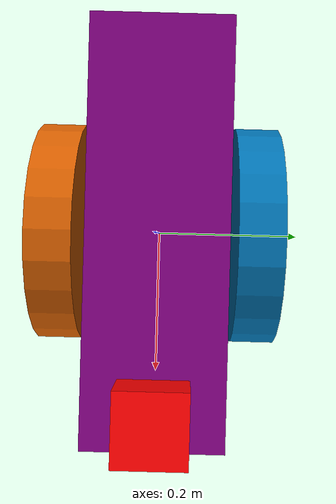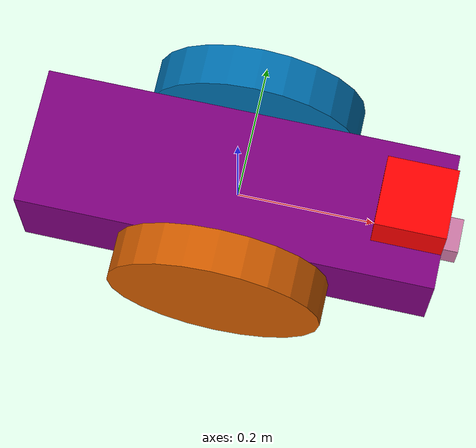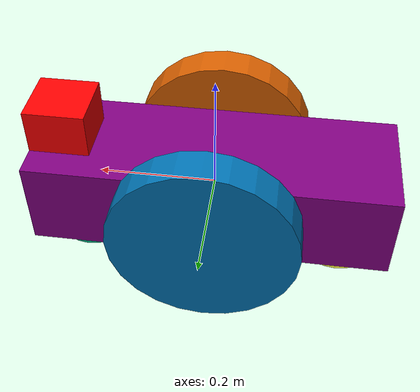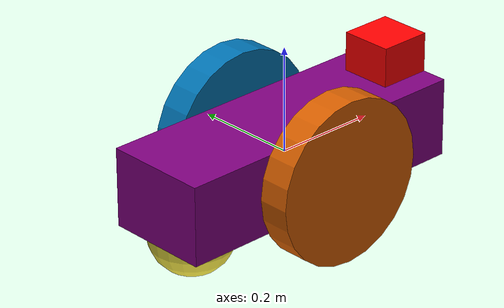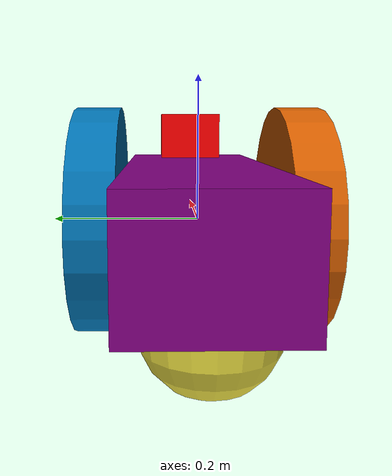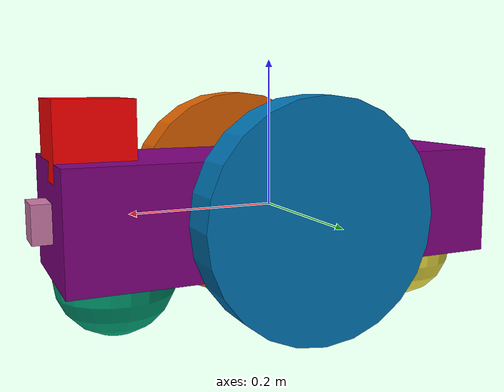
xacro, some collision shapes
<robot name="my_robot" xmlns:xacro="http://www.ros.org/wiki/xacro">

  <link name="robot_footprint"></link>

  <joint name="robot_footprint_joint" type="fixed">
    <origin xyz="0 0 0" rpy="0 0 0" />
    <parent link="robot_footprint"/>
    <child link="chassis" />
  </joint>

    <link name='chassis'>
        <pose>0 0 0.1 0 0 0</pose>

        <inertial>
        <mass value="15.0"/>
        <origin xyz="0.0 0 0" rpy=" 0 0 0"/>
        <inertia
            ixx="0.1" ixy="0" ixz="0"
            iyy="0.1" iyz="0"
            izz="0.1"
        />
        </inertial>

        <collision name='chassis_collision'>
        <origin xyz="0 0 0" rpy=" 0 0 0"/>
        <geometry>
            <box size=".6 .2 .15"/>
        </geometry>
        </collision>

        <visual name='chassis_visual'>
        <origin xyz="0 0 0" rpy=" 0 0 0"/>
        <geometry>
            <box size=".6 .2 .15"/>
        </geometry>
        <material name = "Purple">
          <color rgba="0.5 0.0 0.5 1.0"/>
        </material>
        </visual>
    </link>

    <gazebo reference="chassis">
      <material>Gazebo/Blue</material>
    </gazebo>

    <link name="front_caster">
      <pose> 0 0 0.08 0 0 0 </pose>

      <inertial>
        <origin xyz="0.0 0.0 0.0" rpy="0.0 0.0 0.0"/>
        <mass value="0.1"/>
        <inertia ixx="0.0" ixy="0.0" ixz="0.0" iyy="0.0" iyz="0.0" izz="0.0"/>
      </inertial>

      <collision name='front_caster_collision'>
        <origin xyz="0 0 0" rpy=" 0 0 0"/>
        <geometry>
            <sphere radius="0.08"/>
        </geometry>
        </collision>

        <visual name='front_caster_visual'>
        <origin xyz="0 0 0" rpy=" 0 0 0"/>
        <geometry>
            <sphere radius="0.08"/>
        </geometry>
        </visual>
    </link>

    <joint name="front_caster_joint" type="continuous">
      <origin xyz="0.22 0 -0.075" rpy="0.0 0.0 0.0"/>
      <parent link="chassis"/>
      <child link="front_caster"/>
      <axis xyz="0.0 0.0 1"/>
      <limit effort="10000" velocity="1000"/>
      <dynamics damping="1.0" friction="0.01"/>
    </joint>

    <link name="rear_caster">
      <pose> 0 0 0.08 0 0 0 </pose>
      <inertial>
        <origin xyz="0.0 0.0 0.0" rpy="0.0 0.0 0.0"/>
        <mass value="0.1"/>
        <inertia ixx="0.0" ixy="0.0" ixz="0.0" iyy="0.0" iyz="0.0" izz="0.0"/>
      </inertial>

      <collision name='rear_caster_collision'>
        <origin xyz="0 0 0" rpy=" 0 0 0"/>
        <geometry>
            <sphere radius="0.08"/>
        </geometry>
      </collision>

      <visual name='rear_caster_visual'>
        <origin xyz="0 0 0" rpy=" 0 0 0"/>
        <geometry>
            <sphere radius="0.08"/>
        </geometry>
      </visual>
    </link>

    <joint name="rear_caster_joint" type="continuous">
      <origin xyz="-0.22 0 -0.075" rpy="0.0 0.0 0.0"/>
      <parent link="chassis"/>
      <child link="rear_caster"/>
      <axis xyz="0.0 0.0 1"/>
      <limit effort="10000" velocity="1000"/>
      <dynamics damping="1.0" friction="0.01"/>
    </joint>

    <link name = "left_wheel">
        <pose> 0 0 0.155 0 1.5707 1.5707 </pose>

        <inertial>
        <mass value="5.0"/>
        <origin xyz="0.0 0 0" rpy=" 0 1.5707 1.5707"/>
        <inertia
            ixx="0.1" ixy="0" ixz="0"
            iyy="0.1" iyz="0"
            izz="0.1"
        />
        </inertial>

        <collision name = "collision_left_wheel">
        <origin xyz="0.0 0 0" rpy=" 0 1.5707 1.5707"/>
        <geometry>
          <cylinder length="0.06" radius="0.155"/>
        </geometry>
      </collision>

      <visual name = "visual_left_wheel">
      <origin xyz="0.0 0 0" rpy=" 0 1.5707 1.5707"/>
        <geometry>
          <cylinder length="0.06" radius="0.155"/>
        </geometry>
      </visual>
    </link>

    <joint type="continuous" name="left_wheel_hinge">
        <origin xyz="0 0.135 0" rpy="0 0 0"/>
        <child link="left_wheel"/>
        <parent link="chassis"/>
        <axis xyz="0 1 0" rpy="0 0 0"/>
        <limit effort="10000" velocity="1000"/>
        <dynamics damping="1.0" friction="1.0"/>
    </joint>

    <link name = "right_wheel">
        <pose> 0 0 0.155 0 1.5707 1.5707 </pose>

        <inertial>
        <mass value="5.0"/>
        <origin xyz="0.0 0 0" rpy=" 0 1.5707 1.5707"/>
        <inertia
            ixx="0.1" ixy="0" ixz="0"
            iyy="0.1" iyz="0"
            izz="0.1"
        />
        </inertial>

        <collision name = "collision_right_wheel">
        <origin xyz="0.0 0 0" rpy=" 0 1.5707 1.5707"/>
        <geometry>
          <cylinder length="0.06" radius="0.155"/>
        </geometry>
        </collision>

      <visual name = "visual_right_wheel">
      <origin xyz="0.0 0 0" rpy=" 0 1.5707 1.5707"/>
        <geometry>
          <cylinder length="0.06" radius="0.155"/>
        </geometry>
      </visual>
    </link>

    <joint type="continuous" name="right_wheel_hinge">
        <origin xyz="0 -0.135 0" rpy="0 0 0"/>
        <child link="right_wheel"/>
        <parent link="chassis"/>
        <axis xyz="0 1 0" rpy="0 0 0"/>
        <limit effort="10000" velocity="1000"/>
        <dynamics damping="1.0" friction="1.0"/>
    </joint>

    <link name="camera">
      <inertial>
        <origin xyz="0.0 0.0 0.0" rpy="0.0 0.0 0.0"/>
        <mass value="0.1"/>
        <inertia ixx="1e-6" ixy="0.0" ixz="0.0" iyy="1e-6" iyz="0.0" izz="1e-6"/>
      </inertial>

      <visual name="camera_visual">
        <origin xyz="0.0 0.0 0.0" rpy="0.0 0.0 0.0"/>
        <geometry>
          <box size="0.05 0.05 0.05"/>
        </geometry>
      </visual>

      <collision name = "camera_collision">
        <origin xyz="0.0 0.0 0.0" rpy="0.0 0.0 0.0"/>
        <geometry>
          <box size="0.05 0.05 0.05"/>
        </geometry>
      </collision>
    </link>

    <joint name="camera_joint" type="fixed">
      <origin xyz="0.3 0.0 0.0" rpy="0.0 0.0 0.0"/>
      <parent link="chassis"/>
      <child link="camera"/>
      <axis xyz="0.0 0.0 0.0"/>
      <limit lower="0.0" upper="0.0" effort="0.0" velocity="0.0"/>
    </joint>

    <link name="hokuyo">
      <inertial>
        <origin xyz="0.0 0.0 0.0" rpy="0.0 0.0 0.0"/>
        <mass value="1e-5"/>
        <inertia ixx="1e-6" ixy="0.0" ixz="0.0" iyy="1e-6" iyz="0.0" izz="1e-6"/>
      </inertial>
      <visual name="hokuyo_visual">
        <origin xyz="0.0 0.0 0.0" rpy="0.0 0.0 0.0"/>
        <geometry>
          <mesh filename="file://$(find my_robot)/meshes/hokuyo.dae" scale="1.0 1.0 1.0"/>
        </geometry>
        <material name="">
          <color rgba="1.0 0.0 0.0 1.0"/>
          <texture filename=""/>
        </material>
      </visual>
      <collision name="hokuyo_collsion">
        <origin xyz="0.0 0.0 0.0" rpy="0.0 0.0 0.0"/>
        <geometry>
          <box size="0.1 0.1 0.1"/>
        </geometry>
      </collision>
    </link>

    <joint name="hokuyo_joint" type="fixed">
      <origin xyz="0.25 0.0 0.1" rpy="0.0 0.0 0.0"/>
      <parent link="chassis"/>
      <child link="hokuyo"/>
      <axis xyz="0.0 0.0 0.0"/>
      <limit lower="0.0" upper="0.0" effort="0.0" velocity="0.0"/>
    </joint>

    <!-- This is the plugin for the camera, LiDar, and Differential drive controller -->
    <xacro:include filename="$(find my_robot)/urdf/my_robot.gazebo"/>

</robot>
